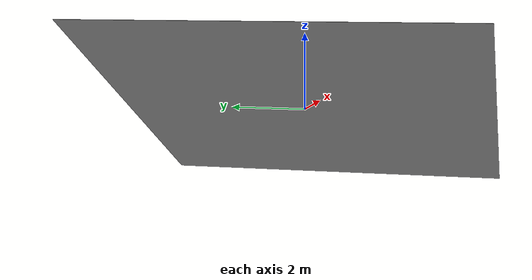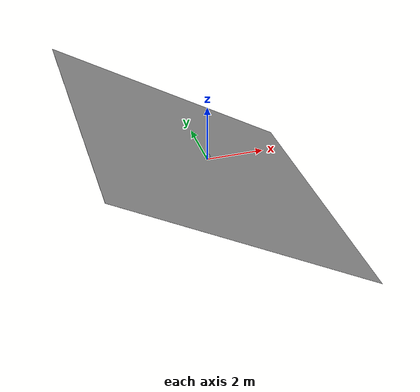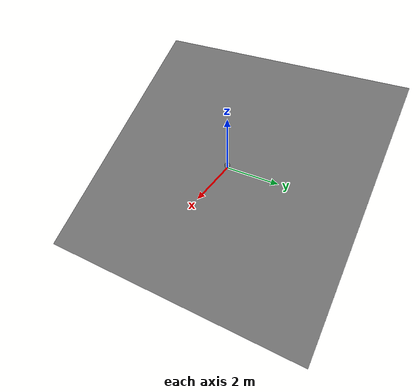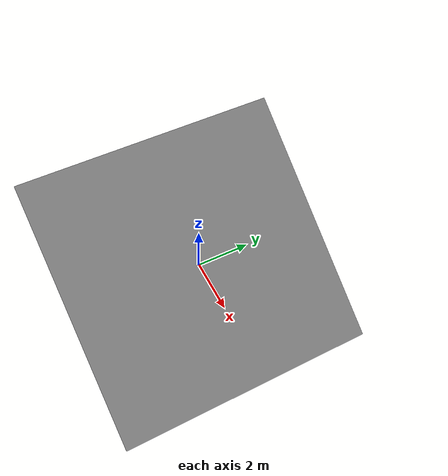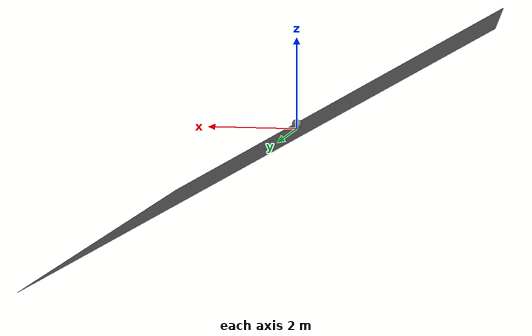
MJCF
<mujoco model="ac13_inclined">
            <option gravity="0 0 -9.81" timestep="0.002" solver="Newton"
                    cone="pyramidal"/>
            <worldbody>
                <body name="ramp" pos="0 0 0" euler="0 30 0">
                    <geom name="floor" type="plane" size="5 5 0.1"/>
                </body>
                <body name="ball" pos="0 0 0.115">
                    <joint type="free"/>
                    <geom name="sphere" type="sphere" size="0.1" mass="1.0"
                          condim="3" friction="0.5 0.5 0.005 0.001 0.001"/>
                </body>
            </worldbody>
        </mujoco>
